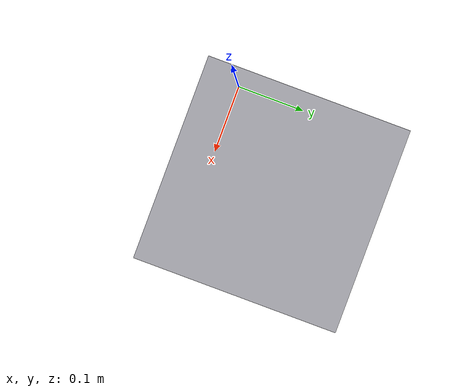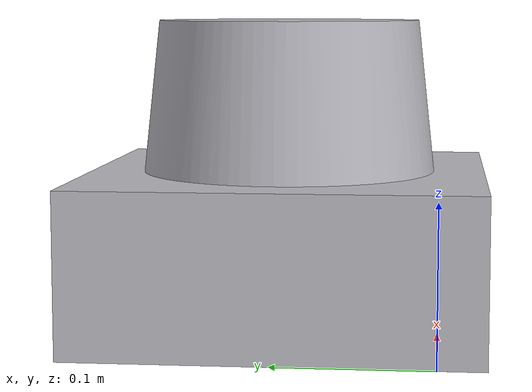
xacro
<?xml version="1.0" ?>
<robot name="robot_arm" xmlns:xacro="http://www.ros.org/wiki/xacro">

<xacro:include filename="$(find robot_arm_description)/urdf/materials.xacro" />
<xacro:include filename="$(find robot_arm_description)/urdf/robot_arm.trans" />
<xacro:include filename="$(find robot_arm_description)/urdf/robot_arm.gazebo" />
<link name="base_link">
  <inertial>
    <origin xyz="0.12998359347972183 0.1019120167264904 0.19612747843827918" rpy="0 0 0"/>
    <mass value="122.02881593376527"/>
    <inertia ixx="4.795532" iyy="4.841718" izz="0.867378" ixy="4e-06" iyz="-0.044736" ixz="0.001262"/>
  </inertial>
  <visual>
    <origin xyz="0 0 0" rpy="0 0 0"/>
    <geometry>
      <mesh filename="package://robot_arm_description/meshes/base_link.stl" scale="0.001 0.001 0.001"/>
    </geometry>
    <material name="silver"/>
  </visual>
  <collision>
    <origin xyz="0 0 0" rpy="0 0 0"/>
    <geometry>
      <mesh filename="package://robot_arm_description/meshes/base_link.stl" scale="0.001 0.001 0.001"/>
    </geometry>
  </collision>
</link>

</robot>

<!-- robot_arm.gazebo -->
<robot name="robot_arm" xmlns:xacro="http://www.ros.org/wiki/xacro" >

<xacro:property name="body_color" value="Gazebo/Silver" />

<gazebo>
  <plugin name="control" filename="libgazebo_ros_control.so"/>
</gazebo>
<gazebo reference="base_link">
  <material>${body_color}</material>
  <mu1>0.2</mu1>
  <mu2>0.2</mu2>
  <selfCollide>true</selfCollide>
  <gravity>true</gravity>
</gazebo>

</robot>
